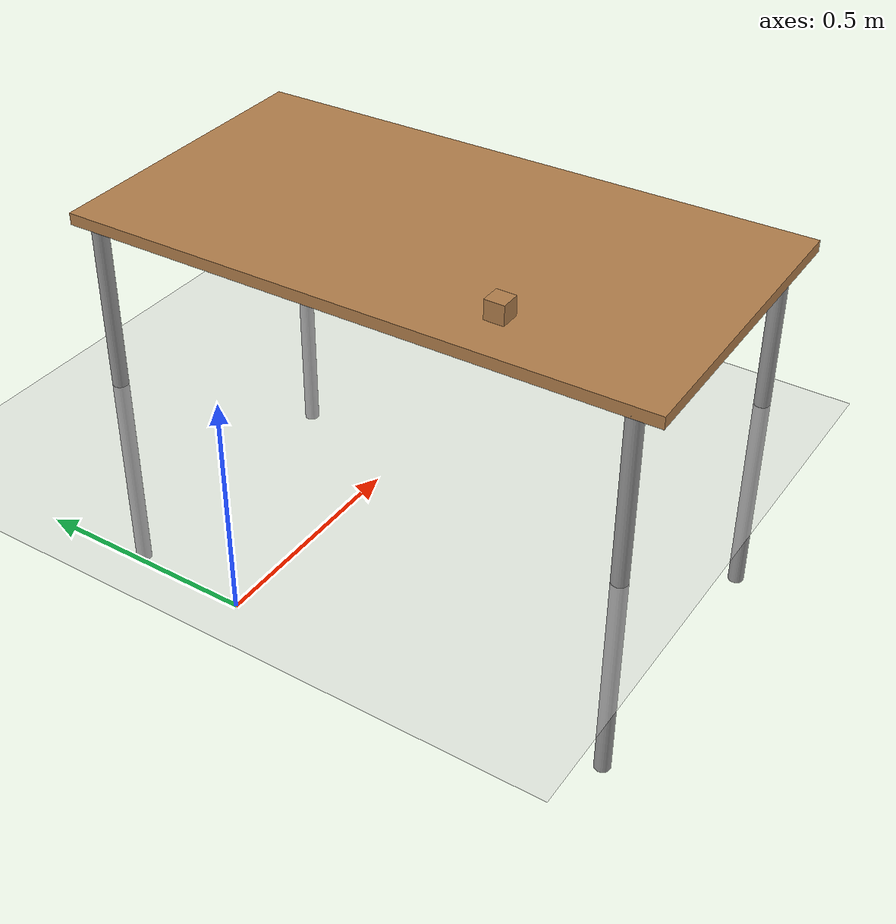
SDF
<sdf version="1.4">
 <world name="default">
  <model name="ground_plane">
   <static>1</static>
   <link name="link">
    <collision name="collision">
     <geometry><plane><normal>0 0 1</normal><size>100 100</size></plane></geometry>
     <surface><friction><ode><mu>100</mu><mu2>50</mu2></ode></friction></surface>
    </collision>
    <visual name="visual">
     <cast_shadows>0</cast_shadows>
     <geometry><plane><normal>0 0 1</normal><size>100 100</size></plane></geometry>
     <material>
      <script><uri>file://media/materials/scripts/gazebo.material</uri><name>Gazebo/Grey</name></script>
     </material>
    </visual>
    <velocity_decay><linear>0</linear><angular>0</angular></velocity_decay>
   </link>
  </model>
  <light name="sun" type="directional">
   <pose>0 0 10 0 -0 0</pose>
   <diffuse>0.8 0.8 0.8 1</diffuse>
   <specular>0.2 0.2 0.2 1</specular>
   <attenuation>
    <range>1000</range>
    <constant>0.9</constant>
    <linear>0.01</linear>
    <quadratic>0.001</quadratic>
   </attenuation>
   <direction>-0.5 0.1 -0.9</direction>
  </light>
  <physics type="ode">
   <real_time_update_rate>1000</real_time_update_rate>
   <gravity>0 0 -9.81</gravity>
   <max_step_size>0.001</max_step_size>
   <real_time_factor>1</real_time_factor>
  </physics>
  <scene><ambient>0.4 0.4 0.4 1</ambient><background>0.7 0.7 0.7 1</background><shadows>1</shadows></scene>
  <spherical_coordinates>
   <surface_model>EARTH_WGS84</surface_model>
   <latitude_deg>0</latitude_deg>
   <longitude_deg>0</longitude_deg>
   <elevation>0</elevation>
   <heading_deg>0</heading_deg>
  </spherical_coordinates>
  <model name="table">
   <static>1</static>
   <link name="link">
    <collision name="surface">
     <pose>0 0 1 0 -0 0</pose>
     <geometry><box><size>1.5 0.8 0.03</size></box></geometry>
     <surface><friction><ode><mu>0.6</mu><mu2>0.6</mu2></ode></friction></surface>
    </collision>
    <visual name="visual1">
     <pose>0 0 1 0 -0 0</pose>
     <geometry><box><size>1.5 0.8 0.03</size></box></geometry>
     <material>
      <script><uri>file://media/materials/scripts/gazebo.material</uri><name>Gazebo/Wood</name></script>
     </material>
    </visual>
    <collision name="front_left_leg">
     <pose>0.68 0.38 0.5 0 -0 0</pose>
     <geometry><cylinder><radius>0.02</radius><length>1</length></cylinder></geometry>
    </collision>
    <visual name="front_left_leg">
     <pose>0.68 0.38 0.5 0 -0 0</pose>
     <geometry><cylinder><radius>0.02</radius><length>1</length></cylinder></geometry>
     <material>
      <script><uri>file://media/materials/scripts/gazebo.material</uri><name>Gazebo/Grey</name></script>
     </material>
    </visual>
    <collision name="front_right_leg">
     <pose>0.68 -0.38 0.5 0 -0 0</pose>
     <geometry><cylinder><radius>0.02</radius><length>1</length></cylinder></geometry>
    </collision>
    <visual name="front_right_leg">
     <pose>0.68 -0.38 0.5 0 -0 0</pose>
     <geometry><cylinder><radius>0.02</radius><length>1</length></cylinder></geometry>
     <material>
      <script><uri>file://media/materials/scripts/gazebo.material</uri><name>Gazebo/Grey</name></script>
     </material>
    </visual>
    <collision name="back_right_leg">
     <pose>-0.68 -0.38 0.5 0 -0 0</pose>
     <geometry><cylinder><radius>0.02</radius><length>1</length></cylinder></geometry>
    </collision>
    <visual name="back_right_leg">
     <pose>-0.68 -0.38 0.5 0 -0 0</pose>
     <geometry><cylinder><radius>0.02</radius><length>1</length></cylinder></geometry>
     <material>
      <script><uri>file://media/materials/scripts/gazebo.material</uri><name>Gazebo/Grey</name></script>
     </material>
    </visual>
    <collision name="back_left_leg">
     <pose>-0.68 0.38 0.5 0 -0 0</pose>
     <geometry><cylinder><radius>0.02</radius><length>1</length></cylinder></geometry>
    </collision>
    <visual name="back_left_leg">
     <pose>-0.68 0.38 0.5 0 -0 0</pose>
     <geometry><cylinder><radius>0.02</radius><length>1</length></cylinder></geometry>
     <material>
      <script><uri>file://media/materials/scripts/gazebo.material</uri><name>Gazebo/Grey</name></script>
     </material>
    </visual>
    <velocity_decay><linear>0</linear><angular>0</angular></velocity_decay>
   </link>
   <pose>0.862945 0.072168 -0.558835 0 -0 1.58771</pose>
  </model>
  <model name="wood_cube_5cm">
   <link name="link">
    <pose>0 0 0.025 0 -0 0</pose>
    <inertial>
     <mass>0.0565</mass>
     <inertia>
      <ixx>2.35417e-05</ixx>
      <ixy>0</ixy>
      <ixz>0</ixz>
      <iyy>2.35417e-05</iyy>
      <iyz>0</iyz>
      <izz>2.35417e-05</izz>
     </inertia>
    </inertial>
    <collision name="collision">
     <geometry><box><size>0.05 0.05 0.05</size></box></geometry>
     <surface><contact><ode><max_vel>0.1</max_vel><min_depth>0.001</min_depth></ode></contact></surface>
    </collision>
    <visual name="visual">
     <geometry><box><size>0.05 0.05 0.05</size></box></geometry>
     <material>
      <script><uri>file://media/materials/scripts/gazebo.material</uri><name>Gazebo/Wood</name></script>
     </material>
    </visual>
    <velocity_decay><linear>0</linear><angular>0</angular></velocity_decay>
   </link>
   <pose>0.60526 -0.243294 0.455625 0 -0 0</pose>
   <static>0</static>
  </model>
 </world>
</sdf>
